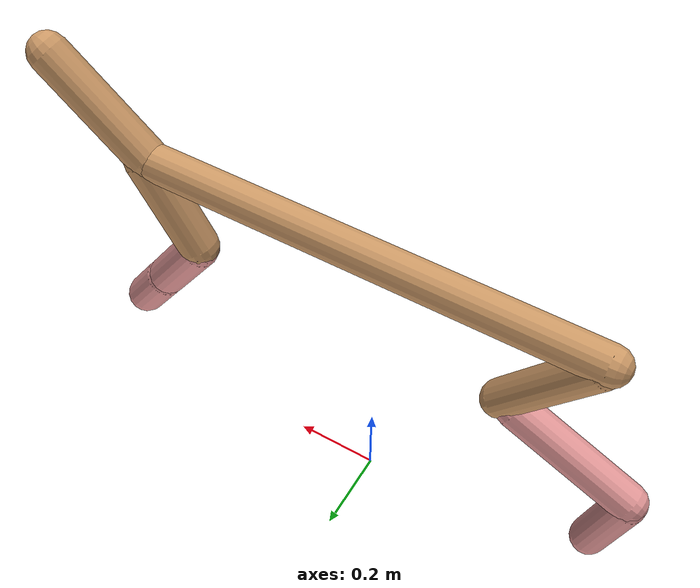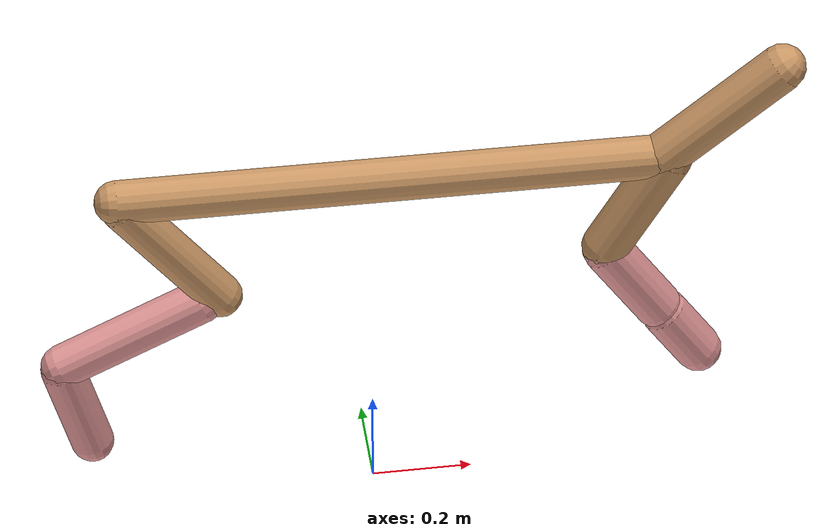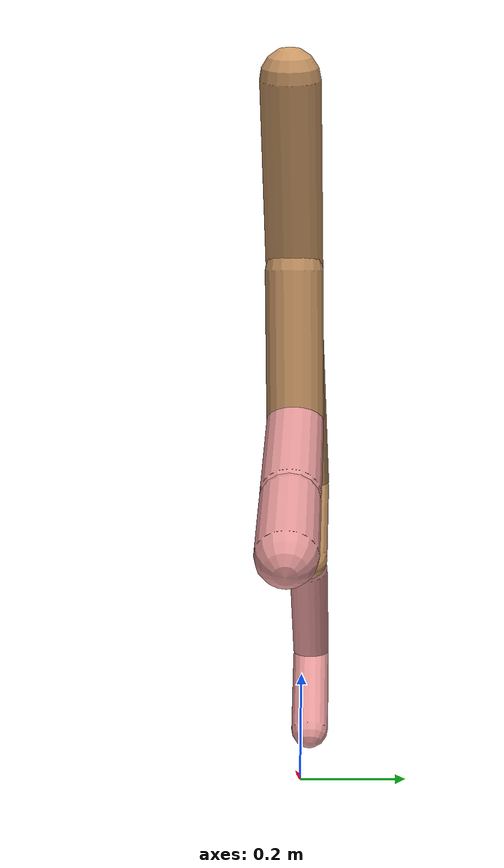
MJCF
<mujoco model="cheetah">
  <compiler angle="radian" coordinate="local" inertiafromgeom="true" settotalmass="14" />
  <default>
    <joint armature=".1" damping=".01" limited="true" solimplimit="0 .8 .03" solreflimit=".02 1" stiffness="8" />
    <geom conaffinity="0" condim="3" contype="1" friction="0.8 .1 .1" rgba="0.8 0.6 .4 1" solimp="0.0 0.8 0.01" solref="0.02 1" />
    <motor ctrllimited="true" ctrlrange="-1 1" />
  </default>
  <size nstack="300000" nuser_geom="1" />
  <option gravity="0 0 -9.81" timestep="0.01" />
  <worldbody>
    <body name="torso" pos="0.0 0.0 0.7681251839374296">
      <joint armature="0" axis="1 0 0" damping="0" limited="false" name="ignorex" pos="0 0 0" stiffness="0" type="slide" />
      <joint armature="0" axis="0 0 1" damping="0" limited="false" name="ignorez" pos="0 0 0" stiffness="0" type="slide" />
      <joint armature="0" axis="0 1 0" damping="0" limited="false" name="ignorey" pos="0 0 0" stiffness="0" type="hinge" />
      <geom fromto="-0.5 0.0 0.0 0.5914760064488531 0.0 0.0" name="torso" size="0.04353914540580991" type="capsule" />
      <geom axisangle="0 1 0 .87" name="head" pos="0.6914760064488531 0.0 0.1" size="0.04695026418765132 0.15" type="capsule" />

      <body name="bthigh" pos="-.5 0 0">
        <joint axis="0 1 0" damping="6" name="bthigh" pos="0 0 0" range="-.52 1.05" stiffness="240" type="hinge" />
        <geom axisangle="0 1 0 -3.8" name="bthigh" pos="0.10510408082294045 0.0 -0.1366353050698226" size="0.043754020857672264 0.15337131497536208" type="capsule" />
        <body name="bshin" pos="0.1702081616458809 0.0 -0.2632706101396452">
          <joint axis="0 1 0" damping="4.5" name="bshin" pos="0 0 0" range="-.785 .785" stiffness="180" type="hinge" />
          <geom axisangle="0 1 0 -2.03" name="bshin" pos="-0.14774572248798828 0.0 -0.07387286124399414" rgba="0.9 0.6 0.6 1" size="0.043754020857672264 0.15865998100899528" type="capsule" />
          <body name="bfoot" pos="-0.29549144497597657 0.0 -0.14774572248798828">
            <joint axis="0 1 0" damping="3" name="bfoot" pos="0 0 0" range="-.4 .785" stiffness="120" type="hinge" />
            <geom axisangle="0 1 0 -.27" name="bfoot" pos="0.03160349097192261 0.0 -0.10218462080921643" rgba="0.9 0.6 0.6 1" size="0.043754020857672264 0.09942692143230371" type="capsule" />
            <inertial mass="10" />
          </body>
        </body>
      </body>
      <body name="fthigh" pos="0.5914760064488531 0.0 0.0">
        <joint axis="0 1 0" damping="4.5" name="fthigh" pos="0 0 0" range="-1.5 0.8" stiffness="180" type="hinge" />
        <geom axisangle="0 1 0 .52" name="fthigh" pos="-0.0646729281720035 0.0 -0.11086787686629168" size="0.047665467756115014 0.12242770757168323" type="capsule" />
        <body name="fshin" pos="-0.129345856344007 0.0 -0.22173575373258336">
          <joint axis="0 1 0" damping="3" name="fshin" pos="0 0 0" range="-1.2 1.1" stiffness="120" type="hinge" />
          <geom axisangle="0 1 0 -.6" name="fshin" pos="0.06006663459382309 0.0 -0.08316918636067812" rgba="0.9 0.6 0.6 1" size="0.047665467756115014 0.09757396242555204" type="capsule" />
          <body name="ffoot" pos="0.12013326918764618 0.0 -0.16633837272135624">
            <joint axis="0 1 0" damping="1.5" name="ffoot" pos="0 0 0" range="-3.1 -0.3" stiffness="60" type="hinge" />
            <geom axisangle="0 1 0 -.6" name="ffoot" pos="0.041991027690421824 0.0 -0.06531937640732285" rgba="0.9 0.6 0.6 1" size="0.047665467756115014 0.0644356355640438" type="capsule" />
            <inertial mass="10" />
          </body>
        </body>
      </body>
    </body>
  </worldbody>
  <actuator>
    <motor gear="120" joint="bthigh" name="bthigh" />
    <motor gear="90" joint="bshin" name="bshin" />
    <motor gear="60" joint="bfoot" name="bfoot" />
    <motor gear="120" joint="fthigh" name="fthigh" />
    <motor gear="60" joint="fshin" name="fshin" />
    <motor gear="30" joint="ffoot" name="ffoot" />
  </actuator>
</mujoco>
